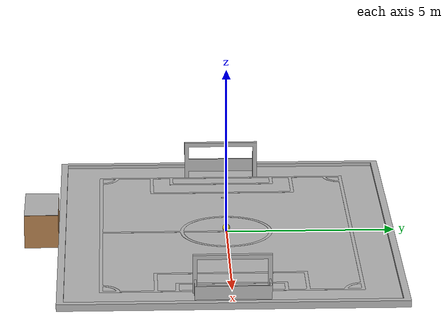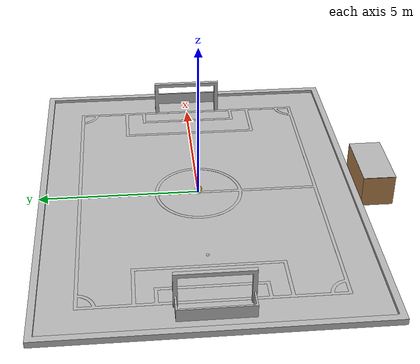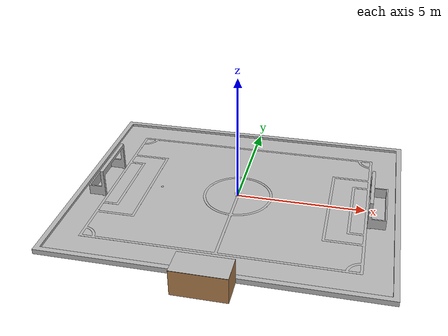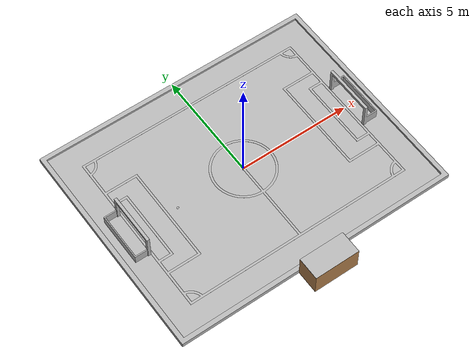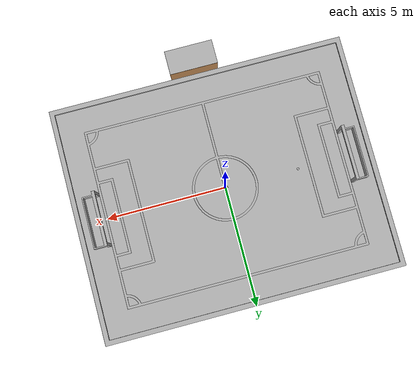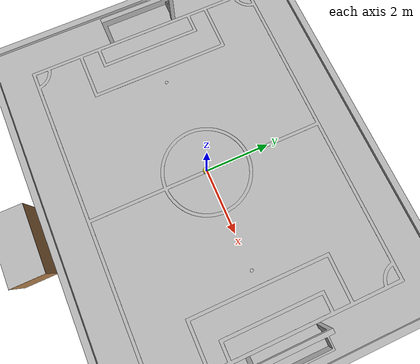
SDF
<sdf version="1.5">
 <world name="mtbasestation">
  <include><uri>model://sun</uri></include>
  <physics type="ode">
   <max_step_size>0.03125</max_step_size>
   <real_time_update_rate>32</real_time_update_rate>
   <gravity>0 0 -9.8</gravity>
  </physics>
  <include><uri>model://msl_lar_field</uri></include>
  <include><uri>model://genbs_ball</uri><name>ball_bs</name></include>
  <include><uri>model://bs_ball</uri><name>ball_1</name></include>
  <include><uri>model://bs_ball</uri><name>ball_2</name></include>
  <include><uri>model://bs_ball</uri><name>ball_3</name></include>
  <include><uri>model://bs_ball</uri><name>ball_4</name></include>
  <include><uri>model://bs_ball</uri><name>ball_5</name></include>
  <plugin filename="libbs_plugin.so" name="bs_plugin"/>
 </world>
</sdf>

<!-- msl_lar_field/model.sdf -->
<sdf version="1.5">
  <model name="RoboCup MSL Field - Lar">
   <pose>-6.3 -4.97 -0.1 0 0 0</pose>
   <static>true</static>

    <link name="field">
      <collision name="field_collision">
        <geometry>
          <mesh>
             <scale>1 1 1</scale>
             <uri>model://msl_lar_field/meshes/collision.STL</uri>
          </mesh>
        </geometry>
        <surface>
            <bounce>
              <restitution_coefficient>0.8</restitution_coefficient>
              <threshold>0.01</threshold>
            </bounce>
            <friction>
              <ode>
                <mu>100</mu>
                <mu2>50</mu2>
              </ode>
            </friction>
          </surface>
      </collision>
      <collision name="base_collision">
      <pose>6.3 4.97 -0.25 0 0 0</pose>
        <geometry>
          <box>
            <size>12.6 9.94 0.5</size>
          </box>
        </geometry>
        <surface>
            <bounce>
              <restitution_coefficient>0.8</restitution_coefficient>
              <threshold>0.01</threshold>
            </bounce>
            <friction>
              <ode>
                <mu>100</mu>
                <mu2>50</mu2>
              </ode>
            </friction>
          </surface>
      </collision>
      <visual name="field_visual">
        <pose>6.3 4.97 0.05 0 0 0</pose>
        <geometry>
          <box>
            <size>12.2 9.54 0.1</size>
          </box>
        </geometry>
         <material>
          <script>
            <uri>model://msl_lar_field/materials/scripts/</uri>
            <uri>model://msl_lar_field/materials/textures/</uri>
            <name>RoboCupField/Field</name>
          </script>
        </material>
      </visual>

      <visual name="lines_visual">
        <geometry>
          <mesh>
             <scale>1 1 1</scale>
             <uri>model://msl_lar_field/meshes/lines.STL</uri>
          </mesh>
        </geometry>
         <material>
          <script>
            <uri>model://msl_lar_field/materials/scripts/</uri>
            <uri>model://msl_lar_field/materials/textures/</uri>
            <name>RoboCupField/Line</name>
          </script>
        </material>
      </visual>

      <visual name="border_visual">
        <geometry>
          <mesh>
             <scale>1 1 1</scale>
             <uri>model://msl_lar_field/meshes/border.STL</uri>
          </mesh>
        </geometry>
         <material>
          <script>
            <uri>model://msl_lar_field/materials/scripts/</uri>
            <uri>model://msl_lar_field/materials/textures/</uri>
            <name>RoboCupField/Border</name>
          </script>
        </material>
      </visual>

      <visual name="refbox_visual">
      <pose>6.3 -0.5 0.5 0 0 0</pose>
        <geometry>
          <box>
            <size>2 1 1</size>
          </box>
        </geometry>
         <material>
          <script>
            <uri>model://msl_lar_field/materials/scripts/</uri>
            <uri>model://msl_lar_field/materials/textures/</uri>
            <name>RoboCupField/Wood</name>
          </script>
        </material>
      </visual>

      <visual name="banner_visual">
      <pose>6.3 -0.5 1.005 0 0 0</pose>
        <geometry>
          <box>
            <size>2 1 0.01</size>
          </box>
        </geometry>
         <material>
          <script>
            <uri>model://msl_lar_field/materials/scripts/</uri>
            <uri>model://msl_lar_field/materials/textures/</uri>
            <name>RoboCupField/LarRefBox</name>
          </script>
        </material>
      </visual>

      <visual name="goals_visual">
      <pose>0 0 0 0 0 0</pose>
        <geometry>
          <mesh>
             <scale>1 1 1</scale>
             <uri>model://msl_lar_field/meshes/goals.STL</uri>
          </mesh>
        </geometry>
         <material>
          <script>
            <uri>model://msl_lar_field/materials/scripts/</uri>
            <uri>model://msl_lar_field/materials/textures/</uri>
            <name>RoboCupField/Goal</name>
          </script>
        </material>
      </visual>

      <!--- NETS LEFT --->

      <!--- NETS RIGHT --->
  </link>

  </model>
</sdf>

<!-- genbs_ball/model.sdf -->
<sdf version="1.5">
  <model name="genbs_ball">
   <pose>0 0 0.115 0 3.14 0</pose>
    <static>false</static>
    <link name="ball">
        <inertial>
          <mass>0.41</mass>
          <inertia>
            <ixx>3.2e-03</ixx>
            <iyy>3.2e-03</iyy>
            <izz>3.2e-03</izz>
            <ixy>0</ixy>
            <ixz>0</ixz>
            <iyz>0</iyz>
          </inertia>
        </inertial>
      <collision name="collision">
        <geometry>
          <sphere>
            <radius>0.11</radius>
          </sphere>
        </geometry>
        <surface>
            <bounce>
              <restitution_coefficient>0.8</restitution_coefficient>
              <threshold>0.01</threshold>
            </bounce>
            <friction>
              <ode>
                <mu>0.1</mu>
                <mu2>0.1</mu2>
              </ode>
            </friction>
            <contact>
              <ode>
                <max_vel>30</max_vel>
              </ode>
            </contact>
          </surface>
      </collision>
      <visual name="visual">
        <geometry>
            <sphere>
            <radius>0.11</radius>
          </sphere>
         </geometry>
         <material>
          <script>
            <uri>model://msl_yellow_ball/materials/scripts/</uri>
            <uri>model://msl_yellow_ball/materials/textures/</uri>
            <name>RoboCupBall/Yellow</name>
          </script>
        </material>
      </visual>

      <velocity_decay>
        <linear>0.00001</linear>
        <angular>0.0005</angular>
      </velocity_decay>
      <self_collide>false</self_collide>
      <gravity>true</gravity>
    </link>
  </model>
</sdf>

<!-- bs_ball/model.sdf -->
<sdf version="1.5">
  <model name="bs_ball">
   <pose>0 0 0.115 0 3.14 0</pose>
    <static>false</static>
    <link name="ball">
        <inertial>
          <mass>0.41</mass>
          <inertia>
            <ixx>3.2e-03</ixx>
            <iyy>3.2e-03</iyy>
            <izz>3.2e-03</izz>
            <ixy>0</ixy>
            <ixz>0</ixz>
            <iyz>0</iyz>
          </inertia>
        </inertial>
      <collision name="collision">
        <geometry>
          <sphere>
            <radius>0.11</radius>
          </sphere>
        </geometry>
        <surface>
            <bounce>
              <restitution_coefficient>0.6</restitution_coefficient>
              <threshold>0.01</threshold>
            </bounce>
            <friction>
              <ode>
                <mu>1</mu>
                <mu2>1</mu2>
                <slip1>0.0</slip1>
                <slip2>0.0</slip2>
              </ode>
            </friction>
            <contact>
              <ode>
                <max_vel>10</max_vel>
                <min_depth>0.001</min_depth>
              </ode>
            </contact>
          </surface>
      </collision>
      <visual name="visual">
        <geometry>
            <sphere>
            <radius>0.11</radius>
          </sphere>
         </geometry>
         <material>
          <script>
            <uri>model://msl_orange_ball/materials/scripts/</uri>
            <uri>model://msl_orange_ball/materials/textures/</uri>
            <name>RoboCupBall/Orange</name>
          </script>
        </material>
      </visual>

      <velocity_decay>
        <linear>0.001</linear>
        <angular>0.05</angular>
      </velocity_decay>
      <self_collide>false</self_collide>
      <gravity>true</gravity>
    </link>
  </model>
</sdf>
